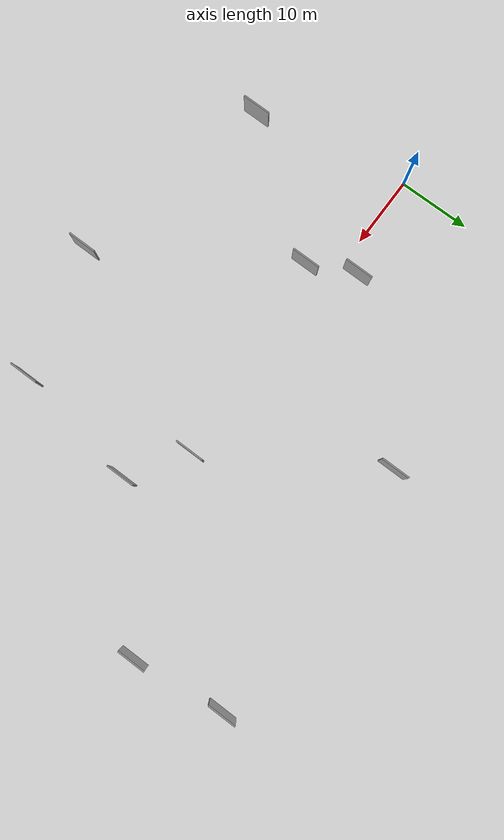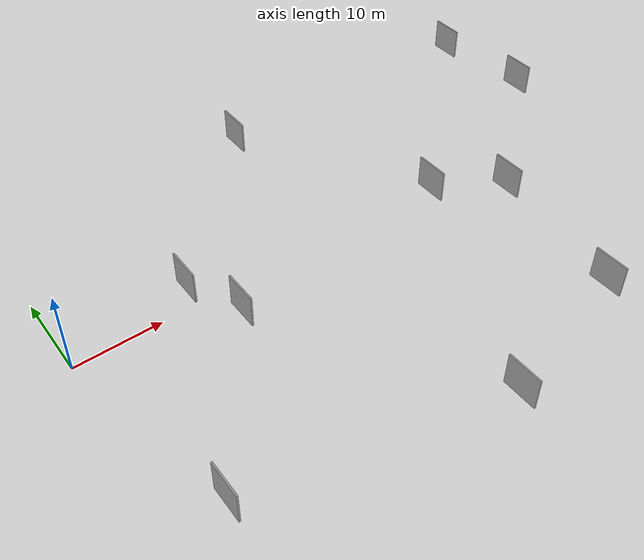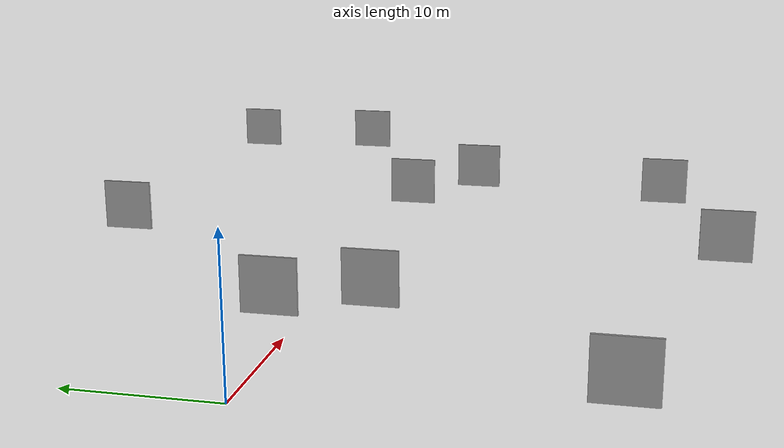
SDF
<sdf version="1.6">
 <world name="default">
  <scene>
   <sky><clouds><speed>12</speed></clouds></sky>
   <ambient>0.4 0.4 0.4 1</ambient>
   <background>0.7 0.7 0.7 1</background>
   <shadows>1</shadows>
  </scene>
  <gravity>0 0 -9.8066</gravity>
  <magnetic_field>6e-06 2.3e-05 -4.2e-05</magnetic_field>
  <physics default="0" name="default_physics" type="ode">
   <ode>
    <solver>
     <type>quick</type>
     <iters>10</iters>
     <sor>1.0</sor>
     <use_dynamic_moi_rescaling>0</use_dynamic_moi_rescaling>
    </solver>
    <constraints>
     <cfm>0</cfm>
     <erp>0.2</erp>
     <contact_max_correcting_vel>100</contact_max_correcting_vel>
     <contact_surface_layer>0.001</contact_surface_layer>
    </constraints>
   </ode>
   <max_step_size>0.004</max_step_size>
   <real_time_factor>1</real_time_factor>
   <real_time_update_rate>250</real_time_update_rate>
  </physics>
  <light name="sun" type="directional">
   <pose>0 0 10 0 0 0</pose>
   <diffuse>0.8 0.8 0.8 1</diffuse>
   <specular>0.2 0.2 0.2 1</specular>
   <attenuation>
    <range>1000</range>
    <constant>0.9</constant>
    <linear>0.01</linear>
    <quadratic>0.001</quadratic>
   </attenuation>
   <direction>-0.5 0.1 -0.9</direction>
  </light>
  <model name="grey_wall_1">
   <static>1</static>
   <pose>17.1118 -3.8610 0.0 0.000000 0.000000 1.570796</pose>
   <link name="link">
    <pose>0 0 2.00 0 0 0</pose>
    <collision name="collision"><geometry><box><size>4.00 0.2 4.00</size></box></geometry></collision>
    <visual name="visual">
     <cast_shadows>0</cast_shadows>
     <geometry><box><size>4.00 0.2 4.00</size></box></geometry>
     <material>
      <script>
       <uri>model://grey_wall/materials/scripts</uri>
       <uri>model://grey_wall/materials/textures</uri>
       <name>vrc/grey_wall</name>
      </script>
     </material>
    </visual>
   </link>
  </model>
  <model name="grey_wall_2">
   <static>1</static>
   <pose>31.9972 20.7891 0.0 0.000000 0.000000 1.570796</pose>
   <link name="link">
    <pose>0 0 2.00 0 0 0</pose>
    <collision name="collision"><geometry><box><size>4.00 0.2 4.00</size></box></geometry></collision>
    <visual name="visual">
     <cast_shadows>0</cast_shadows>
     <geometry><box><size>4.00 0.2 4.00</size></box></geometry>
     <material>
      <script>
       <uri>model://grey_wall/materials/scripts</uri>
       <uri>model://grey_wall/materials/textures</uri>
       <name>vrc/grey_wall</name>
      </script>
     </material>
    </visual>
   </link>
  </model>
  <model name="grey_wall_3">
   <static>1</static>
   <pose>53.0487 -5.7880 0.0 0.000000 0.000000 1.570796</pose>
   <link name="link">
    <pose>0 0 2.00 0 0 0</pose>
    <collision name="collision"><geometry><box><size>4.00 0.2 4.00</size></box></geometry></collision>
    <visual name="visual">
     <cast_shadows>0</cast_shadows>
     <geometry><box><size>4.00 0.2 4.00</size></box></geometry>
     <material>
      <script>
       <uri>model://grey_wall/materials/scripts</uri>
       <uri>model://grey_wall/materials/textures</uri>
       <name>vrc/grey_wall</name>
      </script>
     </material>
    </visual>
   </link>
  </model>
  <model name="grey_wall_4">
   <static>1</static>
   <pose>14.1530 2.3426 0.0 0.000000 0.000000 1.570796</pose>
   <link name="link">
    <pose>0 0 2.00 0 0 0</pose>
    <collision name="collision"><geometry><box><size>4.00 0.2 4.00</size></box></geometry></collision>
    <visual name="visual">
     <cast_shadows>0</cast_shadows>
     <geometry><box><size>4.00 0.2 4.00</size></box></geometry>
     <material>
      <script>
       <uri>model://grey_wall/materials/scripts</uri>
       <uri>model://grey_wall/materials/textures</uri>
       <name>vrc/grey_wall</name>
      </script>
     </material>
    </visual>
   </link>
  </model>
  <model name="grey_wall_5">
   <static>1</static>
   <pose>4.3571 -21.2609 0.0 0.000000 0.000000 1.570796</pose>
   <link name="link">
    <pose>0 0 2.00 0 0 0</pose>
    <collision name="collision"><geometry><box><size>4.00 0.2 4.00</size></box></geometry></collision>
    <visual name="visual">
     <cast_shadows>0</cast_shadows>
     <geometry><box><size>4.00 0.2 4.00</size></box></geometry>
     <material>
      <script>
       <uri>model://grey_wall/materials/scripts</uri>
       <uri>model://grey_wall/materials/textures</uri>
       <name>vrc/grey_wall</name>
      </script>
     </material>
    </visual>
   </link>
  </model>
  <model name="grey_wall_6">
   <static>1</static>
   <pose>45.4856 -0.8520 0.0 0.000000 0.000000 1.570796</pose>
   <link name="link">
    <pose>0 0 2.00 0 0 0</pose>
    <collision name="collision"><geometry><box><size>4.00 0.2 4.00</size></box></geometry></collision>
    <visual name="visual">
     <cast_shadows>0</cast_shadows>
     <geometry><box><size>4.00 0.2 4.00</size></box></geometry>
     <material>
      <script>
       <uri>model://grey_wall/materials/scripts</uri>
       <uri>model://grey_wall/materials/textures</uri>
       <name>vrc/grey_wall</name>
      </script>
     </material>
    </visual>
   </link>
  </model>
  <model name="grey_wall_7">
   <static>1</static>
   <pose>69.6538 8.9021 0.0 0.000000 0.000000 1.570796</pose>
   <link name="link">
    <pose>0 0 2.00 0 0 0</pose>
    <collision name="collision"><geometry><box><size>4.00 0.2 4.00</size></box></geometry></collision>
    <visual name="visual">
     <cast_shadows>0</cast_shadows>
     <geometry><box><size>4.00 0.2 4.00</size></box></geometry>
     <material>
      <script>
       <uri>model://grey_wall/materials/scripts</uri>
       <uri>model://grey_wall/materials/textures</uri>
       <name>vrc/grey_wall</name>
      </script>
     </material>
    </visual>
   </link>
  </model>
  <model name="grey_wall_8">
   <static>1</static>
   <pose>68.1458 21.3194 0.0 0.000000 0.000000 1.570796</pose>
   <link name="link">
    <pose>0 0 2.00 0 0 0</pose>
    <collision name="collision"><geometry><box><size>4.00 0.2 4.00</size></box></geometry></collision>
    <visual name="visual">
     <cast_shadows>0</cast_shadows>
     <geometry><box><size>4.00 0.2 4.00</size></box></geometry>
     <material>
      <script>
       <uri>model://grey_wall/materials/scripts</uri>
       <uri>model://grey_wall/materials/textures</uri>
       <name>vrc/grey_wall</name>
      </script>
     </material>
    </visual>
   </link>
  </model>
  <model name="grey_wall_9">
   <static>1</static>
   <pose>50.2066 -23.3320 0.0 0.000000 0.000000 1.570796</pose>
   <link name="link">
    <pose>0 0 2.00 0 0 0</pose>
    <collision name="collision"><geometry><box><size>4.00 0.2 4.00</size></box></geometry></collision>
    <visual name="visual">
     <cast_shadows>0</cast_shadows>
     <geometry><box><size>4.00 0.2 4.00</size></box></geometry>
     <material>
      <script>
       <uri>model://grey_wall/materials/scripts</uri>
       <uri>model://grey_wall/materials/textures</uri>
       <name>vrc/grey_wall</name>
      </script>
     </material>
    </visual>
   </link>
  </model>
  <model name="grey_wall_10">
   <static>1</static>
   <pose>32.5990 -27.9708 0.0 0.000000 0.000000 1.570796</pose>
   <link name="link">
    <pose>0 0 2.00 0 0 0</pose>
    <collision name="collision"><geometry><box><size>4.00 0.2 4.00</size></box></geometry></collision>
    <visual name="visual">
     <cast_shadows>0</cast_shadows>
     <geometry><box><size>4.00 0.2 4.00</size></box></geometry>
     <material>
      <script>
       <uri>model://grey_wall/materials/scripts</uri>
       <uri>model://grey_wall/materials/textures</uri>
       <name>vrc/grey_wall</name>
      </script>
     </material>
    </visual>
   </link>
  </model>
 </world>
</sdf>
